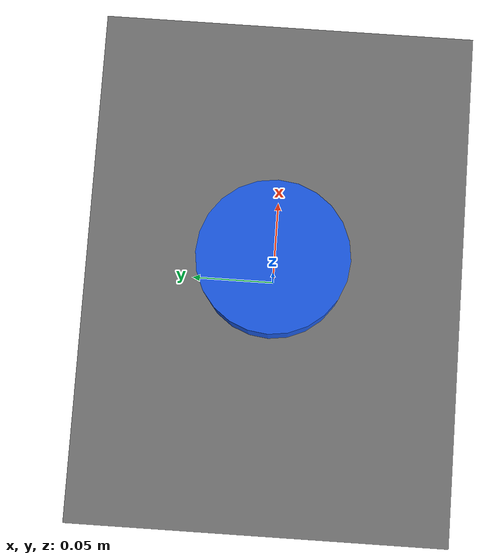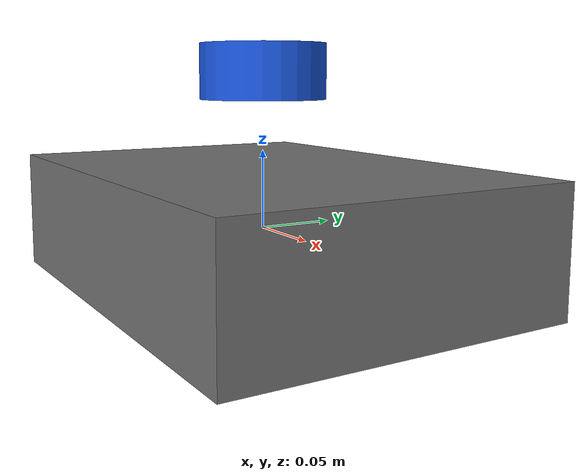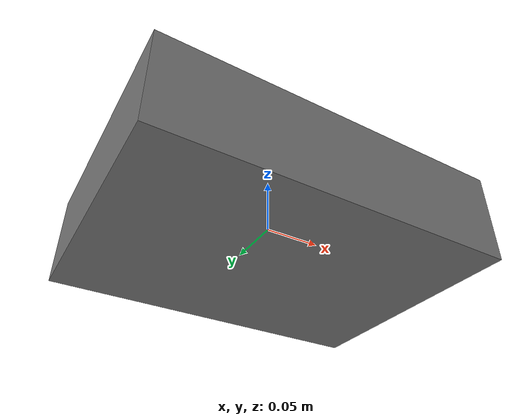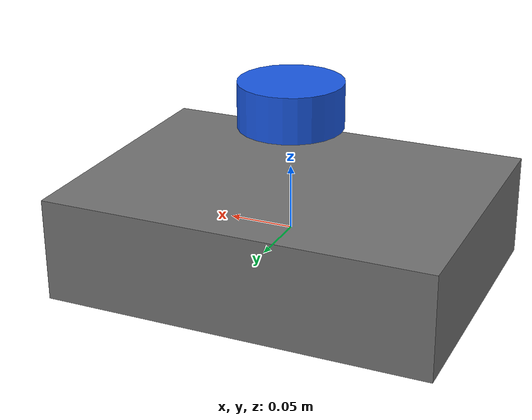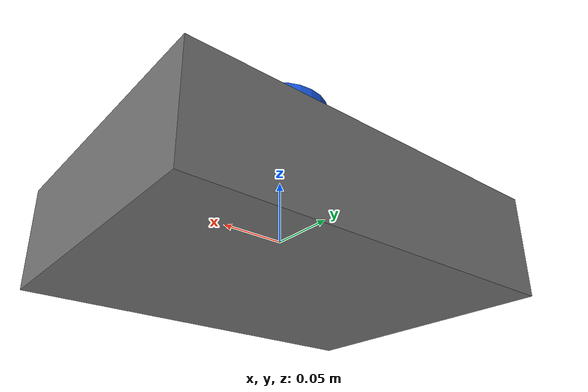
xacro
<?xml version="1.0"?>
<robot name="slam_lidar_platform" xmlns:xacro="http://www.ros.org/wiki/xacro">
  <xacro:arg name="laser_x" default="0.0"/>
  <xacro:arg name="laser_y" default="0.0"/>
  <xacro:arg name="laser_z" default="0.10"/>
  <xacro:arg name="laser_yaw" default="0.0"/>

  <link name="base_link">
    <visual>
      <origin xyz="0 0 0" rpy="0 0 0"/>
      <geometry>
        <box size="0.30 0.22 0.08"/>
      </geometry>
      <material name="base_gray">
        <color rgba="0.45 0.45 0.45 1.0"/>
      </material>
    </visual>
  </link>

  <link name="laser_frame">
    <visual>
      <origin xyz="0 0 0" rpy="0 0 0"/>
      <geometry>
        <cylinder radius="0.04" length="0.035"/>
      </geometry>
      <material name="lidar_blue">
        <color rgba="0.1 0.35 0.9 1.0"/>
      </material>
    </visual>
  </link>

  <joint name="base_to_laser" type="fixed">
    <parent link="base_link"/>
    <child link="laser_frame"/>
    <origin xyz="$(arg laser_x) $(arg laser_y) $(arg laser_z)" rpy="0 0 $(arg laser_yaw)"/>
  </joint>
</robot>
